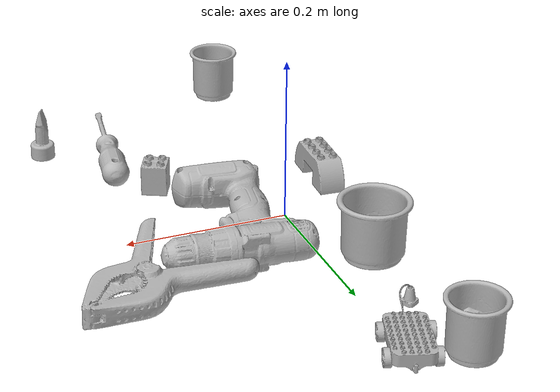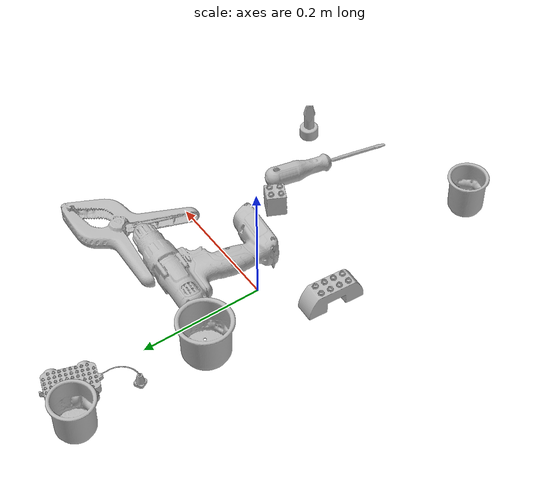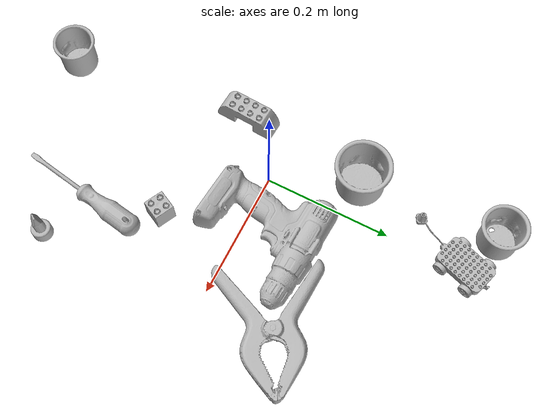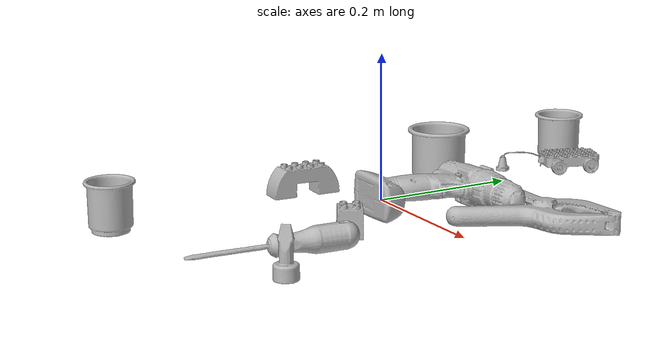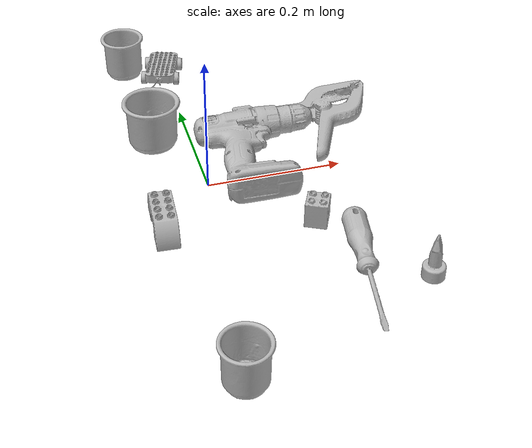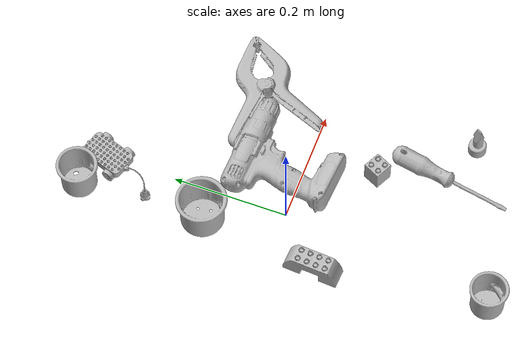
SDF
<sdf version="1.4">
  <world name="default">
    <light name="light1" type="point">
      <pose>0 0 1 0 0 0</pose>
      <diffuse>3 3 3 1</diffuse>
      <specular>3 3 3 1</specular>
    </light>
    <light name="light2" type="point">
      <pose>0 0.5 2 0 0 0</pose>
      <diffuse>1 1 1 1</diffuse>
      <specular>1 1 1 1</specular>
    </light>
    <light name="light3" type="point">
      <pose>0 0.5 2 0 0 0</pose>
      <diffuse>3 3 3 1</diffuse>
      <specular>3 3 3 1</specular>
    </light>
    <scene>
      <ambient>0.7 0.7 0.7</ambient>
    </scene>
    <model name="cup1">
      <link name="link_cup1">
        <collision name="default">
          <geometry>
            <mesh>
              <uri>model://d_cups/collision_meshes/collision.obj</uri>
              <scale>1.0 1.0 1.0</scale>
            </mesh>
          </geometry>
          <surface>
            <friction>
              <ode>
                <mu>0.5</mu>
                <mu2>0.5</mu2>
              </ode>
            </friction>
          <contact>
        <ode>
            <max_vel>0</max_vel>
            <min_depth>0.0001</min_depth>
            <kp>1e8</kp>
        </ode>
    </contact></surface>
        </collision>
        <visual name="default">
          <geometry>
            <mesh>
              <uri>model://d_cups/visual_meshes/visual.dae</uri>
              <scale>1.0 1.0 1.0</scale>
            </mesh>
          </geometry>
        </visual>
        <inertial>
          <mass>0.04943045228719711</mass>
          <pose>0.0008068052702583373 0.0019117395859211683 -0.0022666507866233587 0.2401104468273406 -0.24710716259907536 0.594298245500967</pose>
          <inertia>
            <ixx>4.1384912e-05</ixx>
            <iyy>4.1265153e-05</iyy>
            <izz>3.7460377e-05</izz>
            <ixy>0</ixy>
            <ixz>0</ixz>
            <iyz>0</iyz>
          </inertia>
        </inertial>
      </link>
      <pose>-0.0643424242734909 0.34784242510795593 0.03465902432799339 -1.8489504610369274e-08 -1.7789444062775883e-07 -2.976126492868762</pose>
    </model>
    <model name="cup2">
      <link name="link_cup2">
        <collision name="default">
          <geometry>
            <mesh>
              <uri>model://c_cups/collision_meshes/collision.obj</uri>
              <scale>1.0 1.0 1.0</scale>
            </mesh>
          </geometry>
          <surface>
            <friction>
              <ode>
                <mu>0.5</mu>
                <mu2>0.5</mu2>
              </ode>
            </friction>
          <contact>
        <ode>
            <max_vel>0</max_vel>
            <min_depth>0.0001</min_depth>
            <kp>1e8</kp>
        </ode>
    </contact></surface>
        </collision>
        <visual name="default">
          <geometry>
            <mesh>
              <uri>model://c_cups/visual_meshes/visual.dae</uri>
              <scale>1.0 1.0 1.0</scale>
            </mesh>
          </geometry>
        </visual>
        <inertial>
          <mass>0.02161477506160736</mass>
          <pose>0.0007237254758365452 0.002015391131862998 -0.0012750980677083135 0.3021577101392444 0.013461522825774588 -0.08771822086046323</pose>
          <inertia>
            <ixx>1.607462e-05</ixx>
            <iyy>1.5790554e-05</iyy>
            <izz>1.4215883e-05</izz>
            <ixy>0</ixy>
            <ixz>0</ixz>
            <iyz>0</iyz>
          </inertia>
        </inertial>
      </link>
      <pose>-0.04448828846216202 -0.3674624264240265 0.03345901146531105 1.579345820039957e-06 1.4085168973106935e-07 -2.3302750184082006</pose>
    </model>
    <model name="cup3">
      <link name="link_cup3">
        <collision name="default">
          <geometry>
            <mesh>
              <uri>model://g_cups/collision_meshes/collision.obj</uri>
              <scale>1.0 1.0 1.0</scale>
            </mesh>
          </geometry>
          <surface>
            <friction>
              <ode>
                <mu>0.5</mu>
                <mu2>0.5</mu2>
              </ode>
            </friction>
          <contact>
        <ode>
            <max_vel>0</max_vel>
            <min_depth>0.0001</min_depth>
            <kp>1e8</kp>
        </ode>
    </contact></surface>
        </collision>
        <visual name="default">
          <geometry>
            <mesh>
              <uri>model://g_cups/visual_meshes/visual.dae</uri>
              <scale>1.0 1.0 1.0</scale>
            </mesh>
          </geometry>
        </visual>
        <inertial>
          <mass>0.04413851350545883</mass>
          <pose>-0.0007946275873109698 -4.206433004583232e-05 -0.002132937777787447 -0.2138199678327952 -0.31410615416341514 0.3111935262320568</pose>
          <inertia>
            <ixx>5.151955e-05</ixx>
            <iyy>5.1344283e-05</iyy>
            <izz>5.3365377e-05</izz>
            <ixy>0</ixy>
            <ixz>0</ixz>
            <iyz>0</iyz>
          </inertia>
        </inertial>
      </link>
      <pose>-0.05579158291220665 0.128023162484169 0.03720300644636154 -1.6484778275672634e-08 1.0723844115805268e-07 1.6319641831396143</pose>
    </model>
    <model name="toy1">
      <link name="link_toy1">
        <collision name="default">
          <geometry>
            <mesh>
              <uri>model://e_lego_duplo/collision_meshes/collision.obj</uri>
              <scale>1.0 1.0 1.0</scale>
            </mesh>
          </geometry>
          <surface>
            <friction>
              <ode>
                <mu>0.5</mu>
                <mu2>0.5</mu2>
              </ode>
            </friction>
          <contact>
        <ode>
            <max_vel>0</max_vel>
            <min_depth>0.0001</min_depth>
            <kp>1e8</kp>
        </ode>
    </contact></surface>
        </collision>
        <visual name="default">
          <geometry>
            <mesh>
              <uri>model://e_lego_duplo/visual_meshes/visual.dae</uri>
              <scale>1.0 1.0 1.0</scale>
            </mesh>
          </geometry>
        </visual>
        <inertial>
          <mass>0.08806774020195007</mass>
          <pose>0.0003256051568314433 0.00023485405836254358 0.0019521453650668263 -0.02256777049150226 -6.824370740412915e-05 -0.00762515400873393</pose>
          <inertia>
            <ixx>1.8365032e-05</ixx>
            <iyy>7.537481e-05</iyy>
            <izz>7.3399904e-05</izz>
            <ixy>0</ixy>
            <ixz>0</ixz>
            <iyz>0</iyz>
          </inertia>
        </inertial>
      </link>
      <pose>-0.07992197573184967 -0.07693152874708176 0.021809004247188568 2.1797068222384894e-06 -7.15500805338417e-07 1.5158105226911265</pose>
    </model>
    <model name="toy2">
      <link name="link_toy2">
        <collision name="default">
          <geometry>
            <mesh>
              <uri>model://b_lego_duplo/collision_meshes/collision.obj</uri>
              <scale>1.0 1.0 1.0</scale>
            </mesh>
          </geometry>
          <surface>
            <friction>
              <ode>
                <mu>0.5</mu>
                <mu2>0.5</mu2>
              </ode>
            </friction>
          <contact>
        <ode>
            <max_vel>0</max_vel>
            <min_depth>0.0001</min_depth>
            <kp>1e8</kp>
        </ode>
    </contact></surface>
        </collision>
        <visual name="default">
          <geometry>
            <mesh>
              <uri>model://b_lego_duplo/visual_meshes/visual.dae</uri>
              <scale>1.0 1.0 1.0</scale>
            </mesh>
          </geometry>
        </visual>
        <inertial>
          <mass>0.04734363779425621</mass>
          <pose>-0.00011053025809815153 -9.15254986466607e-06 0.0019294298253953457 -0.03749543151759021 -0.02635344242756168 0.4519151706388912</pose>
          <inertia>
            <ixx>9.689229e-06</ixx>
            <iyy>9.754364e-06</iyy>
            <izz>8.632791e-06</izz>
            <ixy>0</ixy>
            <ixz>0</ixz>
            <iyz>0</iyz>
          </inertia>
        </inertial>
      </link>
      <pose>0.1244916021823883 -0.11941651254892349 0.021814994513988495 4.58707151588693e-07 -2.4270253055938065e-08 -2.028763319149597</pose>
    </model>
    <model name="toy3">
      <link name="link_toy3">
        <collision name="default">
          <geometry>
            <mesh>
              <uri>model://g_lego_duplo/collision_meshes/collision.obj</uri>
              <scale>0.5 0.5 0.5</scale>
            </mesh>
          </geometry>
          <surface>
            <friction>
              <ode>
                <mu>0.5</mu>
                <mu2>0.5</mu2>
              </ode>
            </friction>
          <contact>
        <ode>
            <max_vel>0</max_vel>
            <min_depth>0.0001</min_depth>
            <kp>1e8</kp>
        </ode>
    </contact></surface>
        </collision>
        <visual name="default">
          <geometry>
            <mesh>
              <uri>model://g_lego_duplo/visual_meshes/visual.dae</uri>
              <scale>0.5 0.5 0.5</scale>
            </mesh>
          </geometry>
        </visual>
        <inertial>
          <mass>0.0549229197204113</mass>
          <pose>-0.02502383477985859 0.0008777315961197019 0.0019403378246352077 0.010963030367844774 0.03810824354215502 -0.09653013034360637</pose>
          <inertia>
            <ixx>1.989599e-05</ixx>
            <iyy>6.0152015e-05</iyy>
            <izz>7.525238e-05</izz>
            <ixy>0</ixy>
            <ixz>0</ixz>
            <iyz>0</iyz>
          </inertia>
        </inertial>
      </link>
      <pose>-0.015099761076271534 0.29315876960754395 0.014895823784172535 0.0004143297249812991 -0.0020766415299080343 -1.8900047611037207</pose>
    </model>
    <model name="toy4">
      <link name="link_toy4">
        <collision name="default">
          <geometry>
            <mesh>
              <uri>model://e_toy_airplane/collision_meshes/collision.obj</uri>
              <scale>1.0 1.0 1.0</scale>
            </mesh>
          </geometry>
          <surface>
            <friction>
              <ode>
                <mu>0.5</mu>
                <mu2>0.5</mu2>
              </ode>
            </friction>
          <contact>
        <ode>
            <max_vel>0</max_vel>
            <min_depth>0.0001</min_depth>
            <kp>1e8</kp>
        </ode>
    </contact></surface>
        </collision>
        <visual name="default">
          <geometry>
            <mesh>
              <uri>model://e_toy_airplane/visual_meshes/visual.dae</uri>
              <scale>1.0 1.0 1.0</scale>
            </mesh>
          </geometry>
        </visual>
        <inertial>
          <mass>0.02949252724647522</mass>
          <pose>0.0001174047210952267 -2.248294731543865e-05 -0.011187205091118813 0.00551852159670192 0.009228270522190251 0.15041692690710914</pose>
          <inertia>
            <ixx>9.0014555e-06</ixx>
            <iyy>8.909378e-06</iyy>
            <izz>2.7052915e-06</izz>
            <ixy>0</ixy>
            <ixz>0</ixz>
            <iyz>0</iyz>
          </inertia>
        </inertial>
      </link>
      <pose>0.23165367543697357 -0.26296594738960266 0.033211469650268555 0.00017090488465912313 0.00030049832506197203 2.4228458921559337</pose>
    </model>
    <model name="hardware1">
      <link name="link_hardware1">
        <collision name="default">
          <geometry>
            <mesh>
              <uri>model://power_drill/collision_meshes/collision.obj</uri>
              <scale>1.0 1.0 1.0</scale>
            </mesh>
          </geometry>
          <surface>
            <friction>
              <ode>
                <mu>0.5</mu>
                <mu2>0.5</mu2>
              </ode>
            </friction>
          <contact>
        <ode>
            <max_vel>0</max_vel>
            <min_depth>0.0001</min_depth>
            <kp>1e8</kp>
        </ode>
    </contact></surface>
        </collision>
        <visual name="default">
          <geometry>
            <mesh>
              <uri>model://power_drill/visual_meshes/visual.dae</uri>
              <scale>1.0 1.0 1.0</scale>
            </mesh>
          </geometry>
        </visual>
        <inertial>
          <mass>0.4622694253921509</mass>
          <pose>-0.014780544675886631 0.014369423501193523 0.0012414170196279883 0.0046091653592492164 0.00407302392026691 -0.1836269379856391</pose>
          <inertia>
            <ixx>0.0018837696</ixx>
            <iyy>0.00074116525</iyy>
            <izz>0.0024878501</izz>
            <ixy>0</ixy>
            <ixz>0</ixz>
            <iyz>0</iyz>
          </inertia>
        </inertial>
      </link>
      <pose>0.09154298156499863 0.030035575851798058 0.027312440797686577 -0.03030603079300614 -0.04725286603764038 -0.06176291162116258</pose>
    </model>
    <model name="hardware2">
      <link name="link_hardware2">
        <collision name="default">
          <geometry>
            <mesh>
              <uri>model://flat_screwdriver/collision_meshes/collision.obj</uri>
              <scale>1.0 1.0 1.0</scale>
            </mesh>
          </geometry>
          <surface>
            <friction>
              <ode>
                <mu>0.5</mu>
                <mu2>0.5</mu2>
              </ode>
            </friction>
          <contact>
        <ode>
            <max_vel>0</max_vel>
            <min_depth>0.0001</min_depth>
            <kp>1e8</kp>
        </ode>
    </contact></surface>
        </collision>
        <visual name="default">
          <geometry>
            <mesh>
              <uri>model://flat_screwdriver/visual_meshes/visual.dae</uri>
              <scale>1.0 1.0 1.0</scale>
            </mesh>
          </geometry>
        </visual>
        <inertial>
          <mass>0.07028686255216599</mass>
          <pose>-0.0489187091588974 -0.0006576801533810794 -0.0006140916375443339 -0.5613212056153659 -0.0032337294395619258 0.006982277044942129</pose>
          <inertia>
            <ixx>8.3043415e-06</ixx>
            <iyy>0.00010542549</iyy>
            <izz>0.00010537667</izz>
            <ixy>0</ixy>
            <ixz>0</ixz>
            <iyz>0</iyz>
          </inertia>
        </inertial>
      </link>
      <pose>0.1522960215806961 -0.2372460812330246 0.015338646247982979 -0.21441031465638108 0.04069474481331067 -1.749700541116921</pose>
    </model>
    <model name="hardware3">
      <link name="link_hardware3">
        <collision name="default">
          <geometry>
            <mesh>
              <uri>model://extra_large_clamp/collision_meshes/collision.obj</uri>
              <scale>1.0 1.0 1.0</scale>
            </mesh>
          </geometry>
          <surface>
            <friction>
              <ode>
                <mu>0.5</mu>
                <mu2>0.5</mu2>
              </ode>
            </friction>
          <contact>
        <ode>
            <max_vel>0</max_vel>
            <min_depth>0.0001</min_depth>
            <kp>1e8</kp>
        </ode>
    </contact></surface>
        </collision>
        <visual name="default">
          <geometry>
            <mesh>
              <uri>model://extra_large_clamp/visual_meshes/visual.dae</uri>
              <scale>1.0 1.0 1.0</scale>
            </mesh>
          </geometry>
        </visual>
        <inertial>
          <mass>0.19051048159599304</mass>
          <pose>0.0032320222817361355 -7.615413051098585e-05 0.0003172157157678157 0.013786989477745152 -0.0005066809054022428 -0.0008935736893705532</pose>
          <inertia>
            <ixx>0.00028954487</ixx>
            <iyy>0.0004985067</iyy>
            <izz>0.0007616155</izz>
            <ixy>0</ixy>
            <ixz>0</ixz>
            <iyz>0</iyz>
          </inertia>
        </inertial>
      </link>
      <pose>0.21113035082817078 0.11459919065237045 0.018066221848130226 -0.02439489051913899 -0.00014542437496491663 0.537040965391179</pose>
    </model>
  <physics type="ode">
      <max_contacts>50</max_contacts>
      <ode>
        <solver>
          <type>quick</type>
          <iters>75</iters>
        </solver>
        <constraints>
          <contact_max_correcting_vel>0</contact_max_correcting_vel>
          <contact_surface_layer>0</contact_surface_layer>
        </constraints>
      </ode>
    </physics></world>
</sdf>
